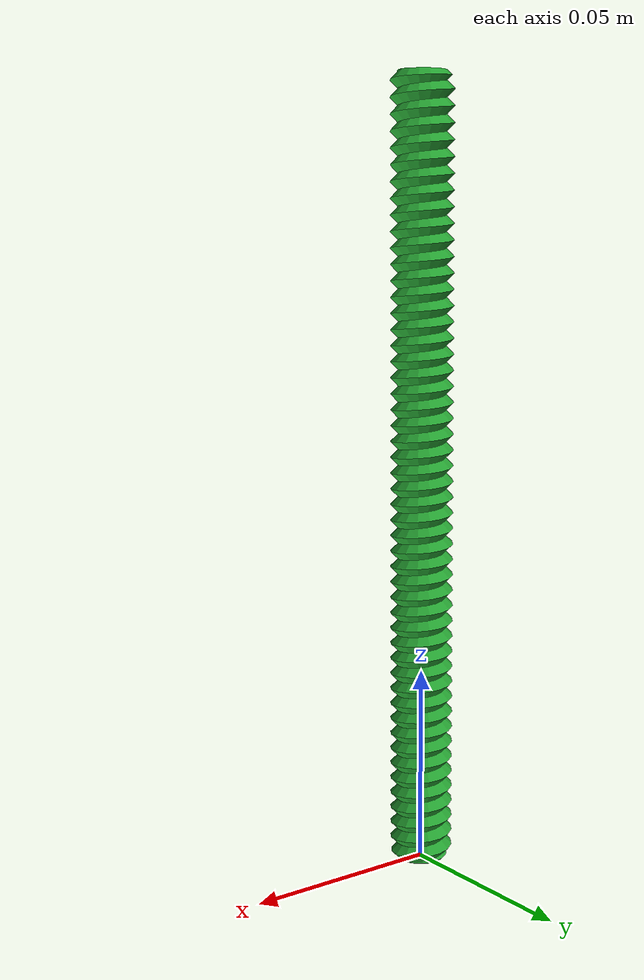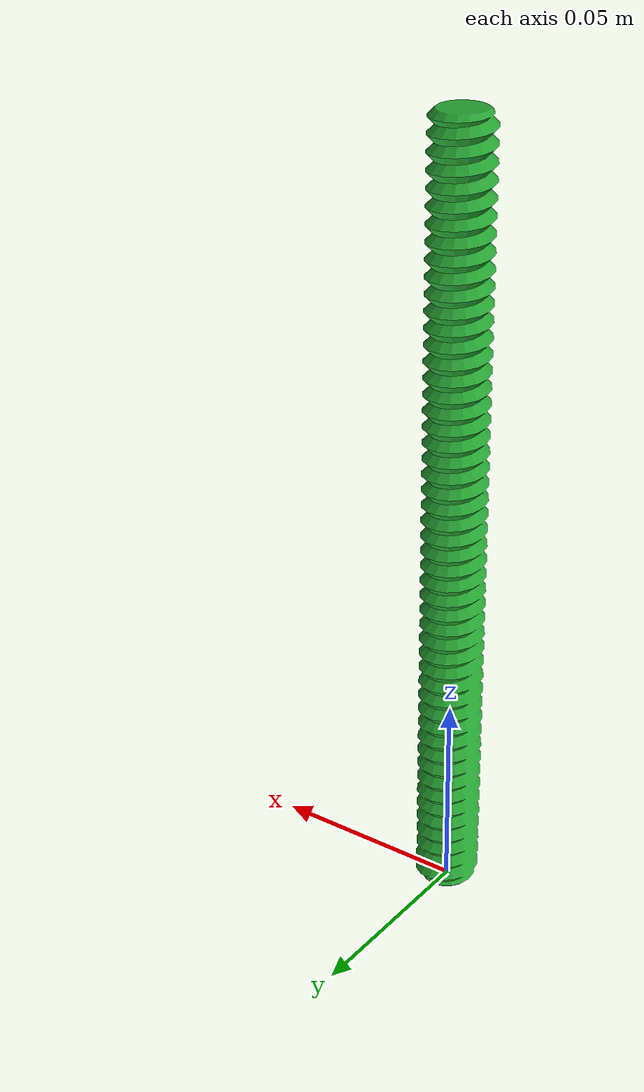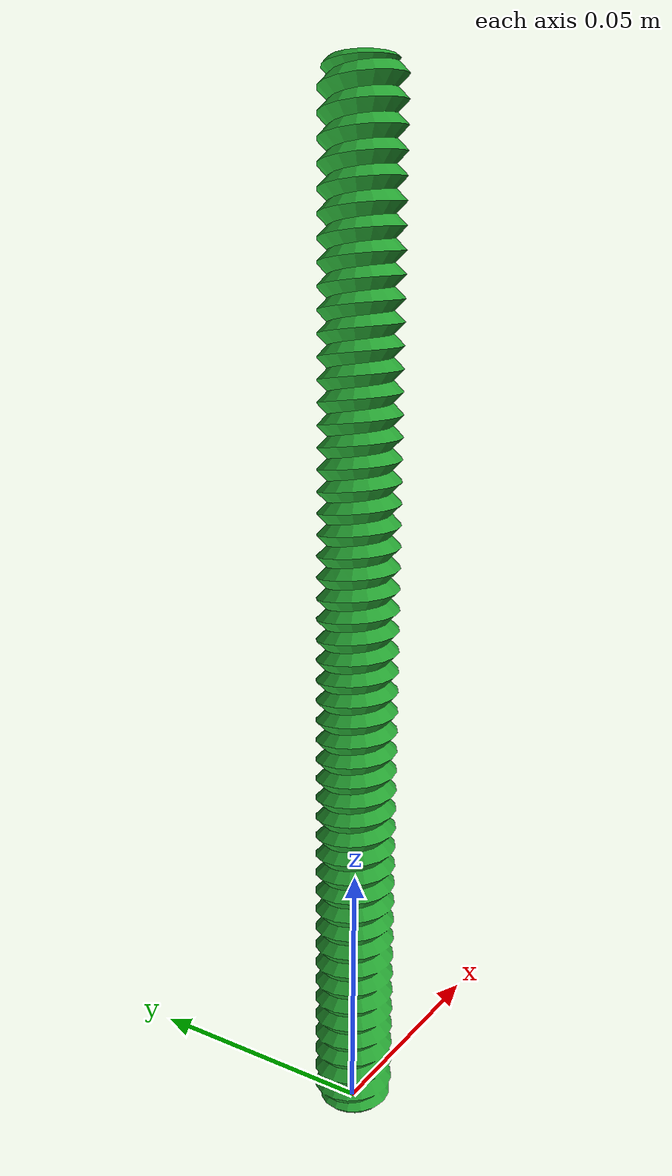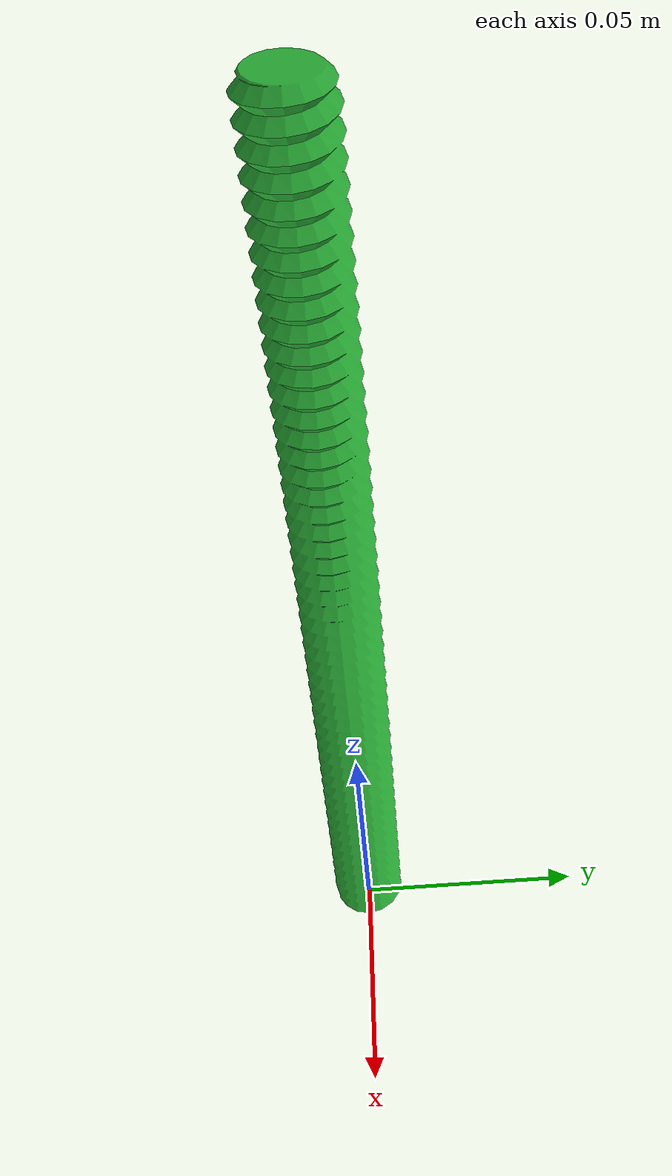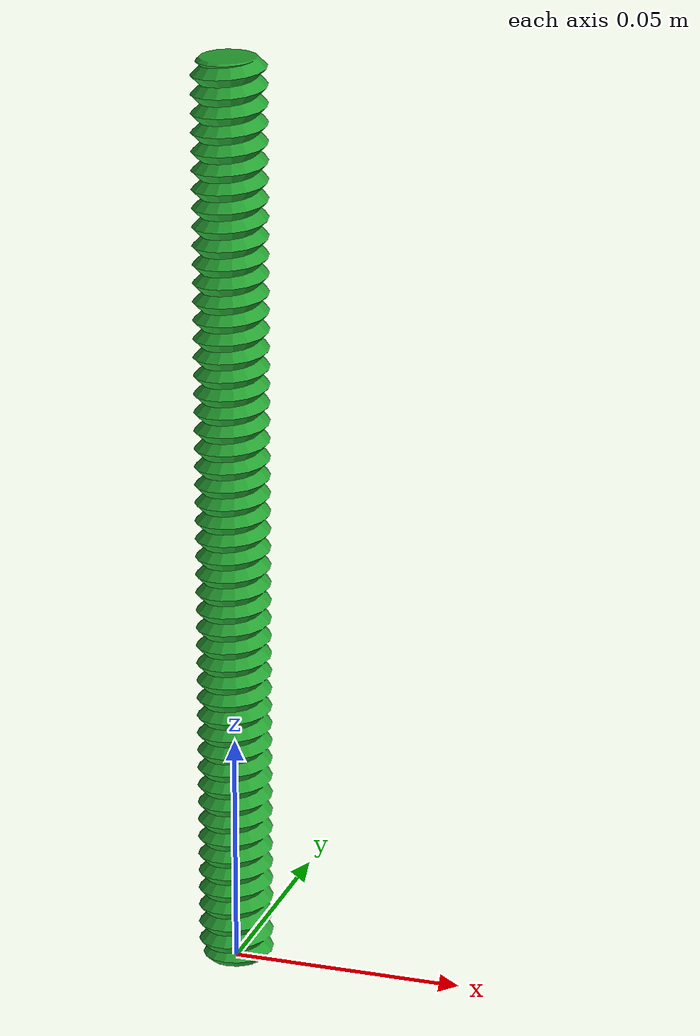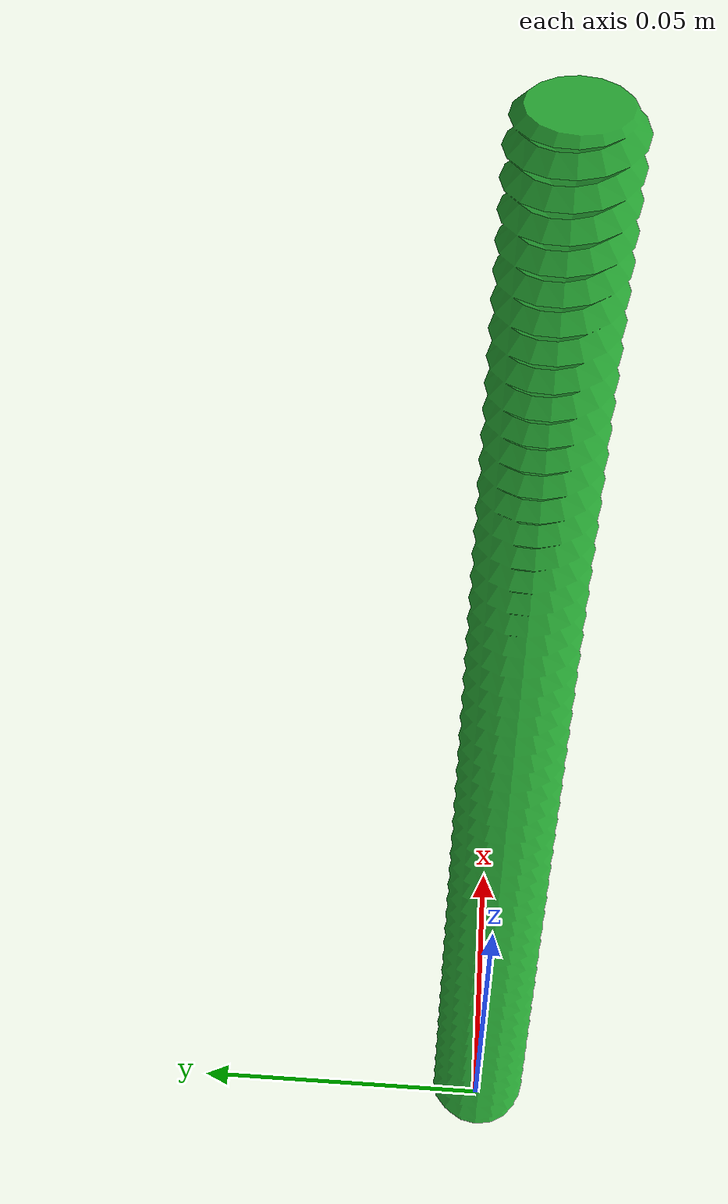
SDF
<?xml version="1.0"?>
<sdf version="1.4">
         <model name="threaded_rod_8x100">
             <static>true</static>
             <link name="link">
                 <pose>0 0 0 0 0 0</pose>
                 <inertial>
                     <pose>3.9968e-06 -0.0 0.0999964777 0 0 0 </pose>
                     <mass>3e-05</mass>
                     <inertia>
                         <ixx>1.0033842283751e-07</ixx>
                         <ixy>4.3e-19</ixy>
                         <ixz>-4.1049e-16</ixz>
                         <iyy>1.0033863326194e-07</iyy>
                         <iyz>8.8827372e-13</iyz>
                         <izz>7.4055516203e-10</izz>
                     </inertia>
                 </inertial>

                 <visual name="visual">
                     <geometry>
                         <mesh>
                             <uri>model://threaded_rod_8x100/meshes/threaded_rod_8x100.stl</uri>
                         </mesh>
                     </geometry>
                     <material>
                         <script>
                             <uri>file://media/materials/scripts/gazebo.material</uri>
                             <name>Gazebo/Green</name>
                         </script>
                     </material>
                 </visual>

                 <collision name="collision">
                     <geometry>
                         <mesh>
                             <uri>model://threaded_rod_8x100/meshes/threaded_rod_8x100.stl</uri>
                         </mesh>
                     </geometry>
                 </collision>
             </link>
         </model>
     </sdf>
